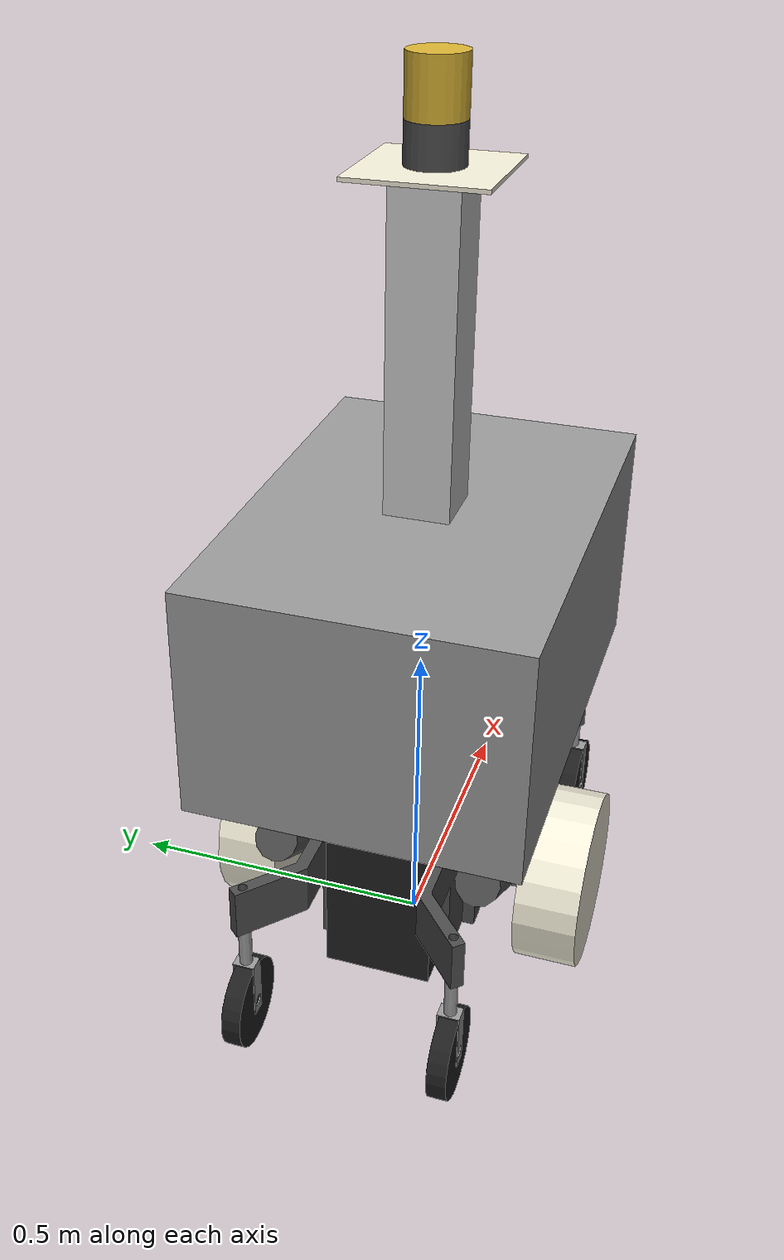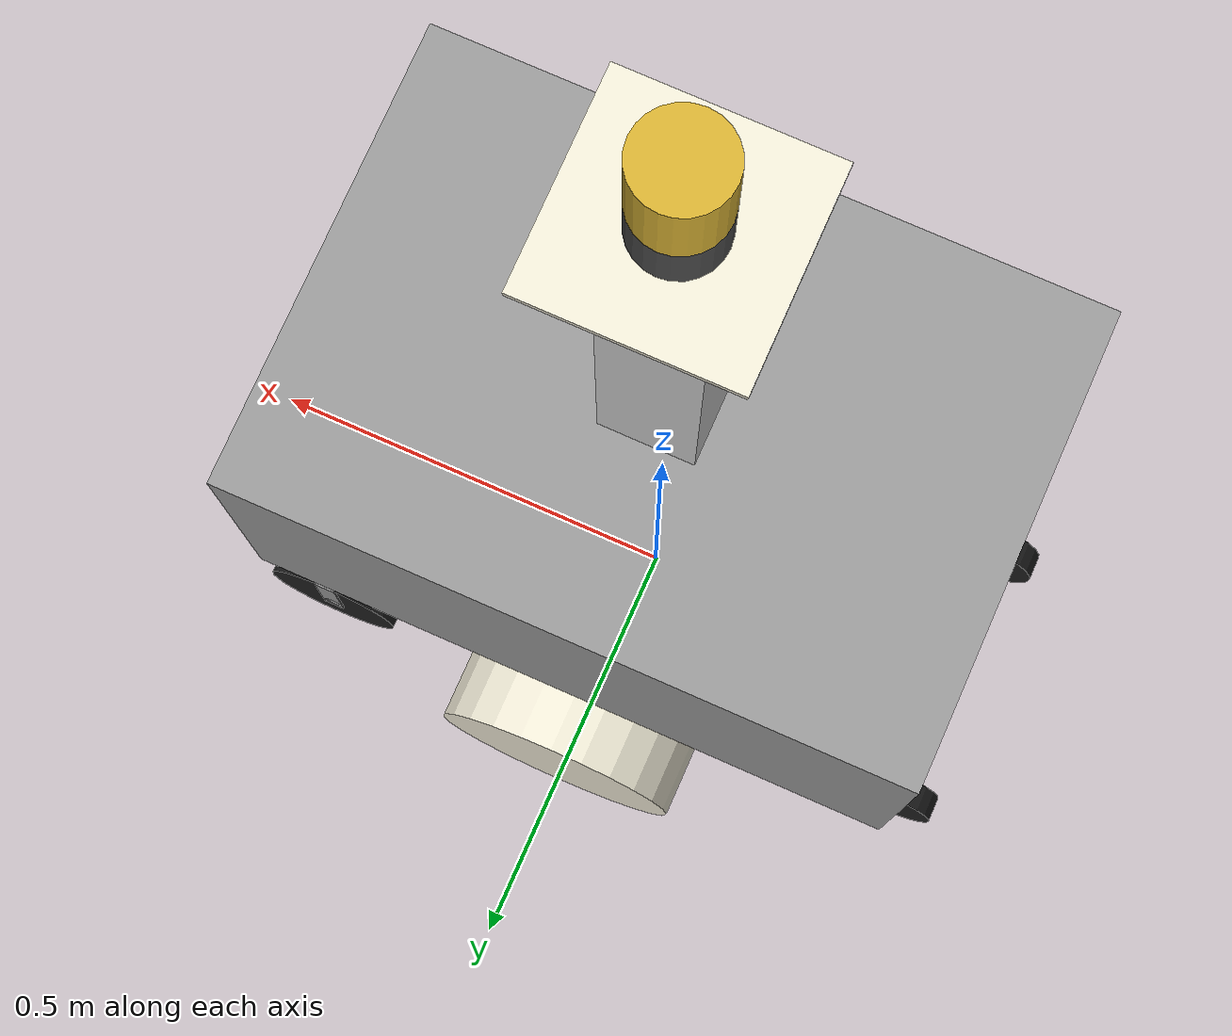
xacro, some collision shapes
<?xml version="1.0" ?>
<robot name="infant" xmlns:xacro="http://ros.org/wiki/xacro">

	<!-- constants for robot dimentions -->
	<xacro:property name="pi" value="3.141592"/>
	<xacro:property name="battery_depth" value="0.420"/>
	<xacro:property name="battery_width" value="0.170"/>
	<xacro:property name="battery_height" value="0.370"/>
	<xacro:property name="rocker_bogie_back_depth" value="0.46056514"/>
	<xacro:property name="rocker_bogie_back_width" value="0.09383127"/>
	<xacro:property name="rocker_bogie_back_height" value="0.230"/>
	<xacro:property name="rocker_bogie_front_depth" value="0.42535668"/>
	<xacro:property name="rocker_bogie_front_width" value="0.11153324"/>
	<xacro:property name="rocker_bogie_front_height" value="0.230"/>
	<xacro:property name="caster_small_length" value="0.065"/>
	<xacro:property name="caster_small_radius" value="0.010"/>
	<xacro:property name="caster_large_length" value="0.045"/>
	<xacro:property name="caster_large_radius" value="0.010"/>
	<xacro:property name="velodyne_base_length" value="0.0586740"/>
	<xacro:property name="velodyne_diameter" value="0.0853440"/>
	<xacro:property name="velodyne_top_length" value="0.0835714"/>
	<xacro:property name="velodyne_laser_depth" value="0.03475311"/>
	<xacro:property name="velodyne_laser_height" value="0.0404979"/>
	<xacro:property name="velodyne_laser_width" value="0.0468099"/>

	<!-- inertial for box -->
	<xacro:macro
		name="default_box_inertial"
		params="mass depth width height x_offset y_offset z_offset">
		<inertial>
			<origin xyz="${x_offset} ${y_offset} ${z_offset}" rpy="0 0 0"/>
			<mass value="${mass}"/>
			<inertia
				ixx="${1/12*mass*(width*width+height*height)}" ixy="0.0" ixz="0.0"
				iyy="${1/12*mass*(height*height+depth*depth)}" iyz="0.0"
				izz="${1/12*mass*(depth*depth+width*width)}"/>
		</inertial>
	</xacro:macro>

	<!-- inertial for cylinder -->
	<xacro:macro
		name="default_cylinder_inertial"
		params="mass length radius x_offset y_offset z_offset">
		<inertial>
			<origin xyz="${x_offset} ${y_offset} ${z_offset}" rpy="0 0 0"/>
			<mass value="${mass}"/>
			<inertia
				ixx="${1/12*mass*(3*radius*radius+length*length)}" ixy="0.0" ixz="0.0"
				iyy="${1/12*mass*(3*radius*radius+length*length)}" iyz="0.0"
				izz="${1/2*mass*radius*radius}"/>
		</inertial>
	</xacro:macro>

	<!-- inertial for wheel -->
	<xacro:macro
		name="default_wheel_inertial"
		params="mass length radius x_offset y_offset z_offset">
		<inertial>
			<origin xyz="${x_offset} ${y_offset} ${z_offset}" rpy="0 0 0"/>
			<mass value="${mass}"/>
			<inertia
				ixx="${1/12*mass*(3*radius*radius+length*length)}" ixy="0.0" ixz="0.0"
				iyy="${1/2*mass*radius*radius}" iyz="0.0"
				izz="${1/12*mass*(3*radius*radius+length*length)}"/>
		</inertial>
	</xacro:macro>

	<!-- import Rviz color -->
	<xacro:include filename="$(find infant_description)/materials/materials.xacro"/>

	<!-- import all Gazebo-customization elements, including Gazebo colors -->
	<xacro:include filename="$(find infant_description)/urdf/infant.gazebo.xacro"/>

	<link name="base_link"/>

	<joint name="base_to_battery_joint" type="fixed">
		<parent link="base_link"/>
		<child link="battery_link"/>
		<origin xyz="0 0 0.140" rpy="0 0 0"/>
	</joint>

	<link name="battery_link">
		<visual>
			<geometry>
				<box size="${battery_depth} ${battery_width} ${battery_height}"/>
			</geometry>
			<origin xyz="0 0 0.085" rpy="0 0 0"/>
			<material name="black"/>
		</visual>
		<collision>
			<geometry>
				<box size="${battery_depth} ${battery_width} ${battery_height}"/>
			</geometry>
			<origin xyz="0 0 0.085" rpy="0 0 0"/>
		</collision>
		<xacro:default_box_inertial
			mass="40" depth="${battery_depth}" width="${battery_width}" height="${battery_height}"
			x_offset="0.0" y_offset="0.0" z_offset="0.085"/>
	</link>

	<xacro:macro name="rocker_bogie_back" params="prefix reflect1 reflect2">
		<joint name="rocker_bogie_back_${prefix}_joint" type="fixed">
			<parent link="battery_link"/>
			<child link="rocker_bogie_back_${prefix}_link"/>
			<origin xyz="0 ${reflect1*0.085} 0" rpy="0 0 0"/>
		</joint>

		<link name="rocker_bogie_back_${prefix}_link">
			<visual>
				<geometry>
					<mesh filename="package://infant_description/meshes/rocker_bogie_parts_back_${prefix}.dae"/>
				</geometry>
				<origin xyz="0 ${reflect2*(-0.020)} 0" rpy="0 ${pi} 0"/>
			</visual>
			<collision>
				<geometry>
					<box size="${rocker_bogie_back_depth} ${rocker_bogie_back_width} ${rocker_bogie_back_height}"/>
				</geometry>
				<origin
					xyz="-${(rocker_bogie_back_depth/2)-0.080} ${reflect1*(rocker_bogie_back_width/2)} 0.035" rpy="0 0 0"/>
			</collision>
			<xacro:default_box_inertial
				mass="5"
				depth="${rocker_bogie_back_depth}"
				width="${rocker_bogie_back_width}"
				height="${rocker_bogie_back_height}"
				x_offset="-${(rocker_bogie_back_depth/2)-0.080}"
				y_offset="${reflect1*(rocker_bogie_back_width/2)}"
				z_offset="0.035"/>
		</link>
	</xacro:macro>

	<xacro:rocker_bogie_back prefix="left" reflect1="1" reflect2="0"/>
	<xacro:rocker_bogie_back prefix="right" reflect1="-1" reflect2="1"/>

	<xacro:macro name="rocker_bogie_front" params="prefix reflect1 reflect2">
		<joint name="rocker_bogie_front_${prefix}_joint" type="fixed">
			<parent link="battery_link"/>
			<child link="rocker_bogie_front_${prefix}_link"/>
			<origin xyz="0 ${reflect1*0.105} 0" rpy="0 0 0"/>
		</joint>

		<link name="rocker_bogie_front_${prefix}_link">
			<visual>
				<geometry>
					<mesh filename="package://infant_description/meshes/rocker_bogie_parts_front_${prefix}.dae"/>
				</geometry>
				<origin xyz="0 ${reflect2*(0.020)} 0" rpy="${pi} 0 0"/>
			</visual>
			<collision>
				<geometry>
					<box size="${rocker_bogie_front_depth} ${rocker_bogie_front_width} ${rocker_bogie_front_height}"/>
				</geometry>
				<origin xyz="${(rocker_bogie_front_depth/2)-0.080} ${reflect1*(rocker_bogie_front_width/2)} 0.035" rpy="0 0 0"/>
			</collision>
			<xacro:default_box_inertial
				mass="5"
				depth="${rocker_bogie_front_depth}"
				width="${rocker_bogie_front_width}"
				height="${rocker_bogie_front_height}"
				x_offset="${(rocker_bogie_front_depth/2)-0.080}"
				y_offset="${reflect1*(rocker_bogie_front_width/2)}"
				z_offset="0.035"/>

		</link>
	</xacro:macro>

	<xacro:rocker_bogie_front prefix="left" reflect1="1" reflect2="1"/>
	<xacro:rocker_bogie_front prefix="right" reflect1="-1" reflect2="0"/>

	<xacro:macro name="caster_small" params="prefix reflect">
		<joint name="caster_small_${prefix}_joint" type="fixed">
			<parent link="rocker_bogie_back_${prefix}_link"/>
			<child link="caster_small_${prefix}_link"/>
			<origin xyz="-0.360 ${reflect*0.075} 0.070" rpy="0 0 0"/>
			<axis xyz="0 0 1"/>
		</joint>

		<link name="caster_small_${prefix}_link">
			<visual>
				<geometry>
					<mesh filename="package://infant_description/meshes/caster_small.dae"/>
				</geometry>
				<origin xyz="0 0 0" rpy="-${pi/2} 0 ${pi/2}"/>
			</visual>
			<collision>
				<geometry>
					<cylinder length="${caster_small_length}" radius="${caster_small_radius}"/>
				</geometry>
				<origin xyz="0 0 -${caster_small_length/2}" rpy="0 0 0"/>
			</collision>
			<xacro:default_cylinder_inertial
				mass="0.5" length="${caster_small_length}" radius="${caster_small_radius}"
				x_offset="0.0" y_offset="0.0" z_offset="-${caster_small_length/2}"/>
		</link>
	</xacro:macro>

	<xacro:caster_small prefix="left" reflect="1"/>
	<xacro:caster_small prefix="right" reflect="-1"/>

	<xacro:macro name="caster_large" params="prefix reflect">
		<joint name="caster_large_${prefix}_joint" type="fixed">
			<parent link="rocker_bogie_front_${prefix}_link"/>
			<child link="caster_large_${prefix}_link"/>
			<origin xyz="0.330 ${reflect*0.095} 0.070" rpy="0 0 0"/>
			<axis xyz="0 0 1"/>
		</joint>

		<link name="caster_large_${prefix}_link">
			<visual>
				<geometry>
					<mesh filename="package://infant_description/meshes/caster_large.dae"/>
				</geometry>
				<origin xyz="0 0 0" rpy="-${pi/2} 0 ${pi/2}"/>
			</visual>
			<collision>
				<geometry>
					<cylinder length="${caster_large_length}" radius="${caster_large_radius}"/>
				</geometry>
				<origin xyz="0 0 -${caster_large_length/2}" rpy="0 0 0"/>
			</collision>
			<xacro:default_cylinder_inertial
				mass="0.5" length="${caster_large_length}" radius="${caster_large_radius}"
				x_offset="0.0" y_offset="0.0" z_offset="-${caster_large_length/2}"/>
		</link>
	</xacro:macro>

	<xacro:caster_large prefix="left" reflect="1"/>
	<xacro:caster_large prefix="right" reflect="-1"/>

	<xacro:macro name="wheel" params="prefix reflect">
		<joint name="wheel_${prefix}_joint" type="continuous">
			<parent link="rocker_bogie_front_${prefix}_link"/>
			<child link="wheel_${prefix}_link"/>
			<origin xyz="0 ${reflect*0.145} 0" rpy="0 0 0"/>
			<axis xyz="0 1 0"/>
		</joint>

		<link name="wheel_${prefix}_link">
			<visual>
				<geometry>
					<cylinder length="0.100" radius="0.14240"/>
				</geometry>
				<origin xyz="0 0 0" rpy="${pi/2} 0 0"/>
				<material name="ivory"/>
			</visual>
			<collision>
				<geometry>
					<cylinder length="0.100" radius="0.14240"/>
				</geometry>
				<origin xyz="0 0 0" rpy="${pi/2} 0 0"/>
			</collision>
			<xacro:default_wheel_inertial
				mass="4" length="0.100" radius="0.142240"
				x_offset="0.0" y_offset="0.0" z_offset="0.0"/>
		</link>
	</xacro:macro>

	<xacro:wheel prefix="left" reflect="1"/>
	<xacro:wheel prefix="right" reflect="-1"/>

	<xacro:macro name="wheel_small" params="prefix">
		<joint name="wheel_small_${prefix}_joint" type="fixed">
			<parent link="caster_small_${prefix}_link"/>
			<child link="wheel_small_${prefix}_link"/>
			<origin xyz="0 0 -0.145" rpy="0 0 0"/>
			<axis xyz="0 1 0"/>
		</joint>

		<link name="wheel_small_${prefix}_link">
			<visual>
				<geometry>
					<cylinder length="0.030" radius="0.070"/>
				</geometry>
				<origin xyz="0 0 0" rpy="${pi/2} 0 0"/>
				<material name="black"/>
			</visual>
			<collision>
				<geometry>
					<cylinder length="0.030" radius="0.070"/>
				</geometry>
				<origin xyz="0 0 0" rpy="${pi/2} 0 0"/>
			</collision>
			<xacro:default_wheel_inertial
				mass="1.5" length="0.030" radius="0.070"
				x_offset="0.0" y_offset="0.0" z_offset="0.0"/>
		</link>
	</xacro:macro>

	<xacro:wheel_small prefix="left"/>
	<xacro:wheel_small prefix="right"/>

	<xacro:macro name="wheel_large" params="prefix">
		<joint name="wheel_large_${prefix}_joint" type="fixed">
			<parent link="caster_large_${prefix}_link"/>
			<child link="wheel_large_${prefix}_link"/>
			<origin xyz="0 0 -0.130" pry="0 0 0"/>
			<axis xyz="0 1 0"/>
		</joint>

		<link name="wheel_large_${prefix}_link">
			<visual>
				<geometry>
					<cylinder length="0.040" radius="0.080"/>
				</geometry>
				<origin xyz="0 0 0" rpy="${pi/2} 0 0"/>
				<material name="black"/>
			</visual>
			<collision>
				<geometry>
					<cylinder length="0.040" radius="0.080"/>
				</geometry>
				<origin xyz="0 0 0" rpy="${pi/2} 0 0"/>
			</collision>
			<xacro:default_wheel_inertial
				mass="1.5" length="0.040" radius="0.080"
				x_offset="0.0" y_offset="0.0" z_offset="0.0"/>
		</link>
	</xacro:macro>

	<xacro:wheel_large prefix="left"/>
	<xacro:wheel_large prefix="right"/>

	<joint name="box_joint" type="fixed">
		<parent link="battery_link"/>
		<child link="box_link"/>
		<origin xyz="0 0 0.450" rpy="0 0 0"/>
	</joint>

	<link name="box_link">
		<visual>
			<geometry>
				<box size="0.720 0.500 0.360"/>
			</geometry>
			<origin xyz="0 0 0" rpy="0 0 0"/>
			<material name="gray"/>
		</visual>
		<collision>
			<geometry>
				<box size="0.720 0.500 0.360"/>
			</geometry>
			<origin xyz="0 0 0" rpy="0 0 0"/>
		</collision>
		<xacro:default_box_inertial
			mass="30" depth="0.720" width="0.500" height="0.360"
			x_offset="0.0" y_offset="0.0" z_offset="0.0"/>
	</link>

	<joint name="mast_joint" type="fixed">
		<parent link="box_link"/>
		<child link="mast_link"/>
		<origin xyz="0 0 0.420" rpy="0 0 0"/>
	</joint>

	<link name="mast_link">
		<visual>
			<geometry>
				<box size="0.100 0.100 0.480"/>
			</geometry>
			<origin xyz="0 0 0" rpy="0 0 0"/>
			<material name="lightgray"/>
		</visual>
		<collision>
			<geometry>
				<box size="0.100 0.100 0.480"/>
			</geometry>
			<origin xyz="0 0 0" rpy="0 0 0"/>
		</collision>
		<xacro:default_box_inertial
			mass="10" depth="0.100" width="0.100" height="0.480"
			x_offset="0.0" y_offset="0.0" z_offset="0.0"/>
	</link>

	<joint name="table_joint" type="fixed">
		<parent link="mast_link"/>
		<child link="table_link"/>
		<origin xyz="0 0 0.246" rpy="0 0 0"/>
	</joint>

	<link name="table_link">
		<visual>
			<geometry>
				<box size="0.200 0.200 0.006"/>
			</geometry>
			<origin xyz="0 0 0" rpy="0 0 0"/>
			<material name="ivory"/>
		</visual>
		<collision>
			<geometry>
				<box size="0.200 0.200 0.006"/>
			</geometry>
			<origin xyz="0 0 0" rpy="0 0 0"/>
		</collision>
		<xacro:default_box_inertial
			mass="1" depth="0.200" width="0.200" height="0.006"
			x_offset="0.0" y_offset="0.0" z_offset="0.0"/>
	</link>

	<!-- velodyne -->
	<joint name="velodyne_base_joint" type="fixed">
		<parent link="table_link"/>
		<child link="velodyne_base_link"/>
		<origin xyz="0 0 0.003" rpy="0 0 0"/>
	</joint>

	<link name="velodyne_base_link">
		<visual>
			<geometry>
				<cylinder length="${velodyne_base_length}" radius="${velodyne_diameter/2}"/>
			</geometry>
			<origin xyz="0 0 ${velodyne_base_length/2}" rpy="0 0 0"/>
			<material name="darkgray"/>
		</visual>
		<collision>
			<geometry>
				<cylinder length="${velodyne_base_length}" radius="${velodyne_diameter/2}"/>
			</geometry>
			<origin xyz="0 0 ${velodyne_base_length/2}" rpy="0 0 0"/>
		</collision>
		<xacro:default_cylinder_inertial
			mass="1.0" length="${velodyne_base_length}" radius="${velodyne_diameter/2}"
			x_offset="0.0" y_offset="0.0" z_offset="${velodyne_base_length/2}"/>
	</link>

	<joint name="velodyne_top_joint" type="continuous">
		<parent link="velodyne_base_link"/>
		<child link="velodyne_top_link"/>
		<origin xyz="0 0 ${velodyne_base_length}" rpy="0 0 0"/>
		<axis xyz="0 0 1"/>
	</joint>

	<link name="velodyne_top_link">
		<visual>
			<geometry>
				<mesh filename="package://infant_description/meshes/velodyne_top.dae"/>
			</geometry>
			<origin xyz="0 0 0" rpy="${pi/2} 0 0"/>
		</visual>
		<collision>
			<geometry>
				<cylinder length="${velodyne_top_length}" radius="${velodyne_diameter/2}"/>
			</geometry>
			<origin xyz="0 0 ${velodyne_top_length/2}" rpy="0 0 0"/>
		</collision>
		<xacro:default_cylinder_inertial
			mass="0.0001" length="${velodyne_top_length}" radius="${velodyne_diameter/2}"
			x_offset="0.0" y_offset="0.0" z_offset="${velodyne_top_length/2}"/>
	</link>

	<joint name="velodyne_laser1_joint" type="fixed">
		<parent link="velodyne_top_link"/>
		<child link="velodyne_laser1_link"/>
		<origin xyz="0 0 ${0.0069204+(velodyne_laser_height/2)}" rpy="-${pi/2} 0 0"/>
	</joint>

	<link name="velodyne_laser1_link">
		<visual>
			<geometry>
				<box size="${velodyne_laser_depth} ${velodyne_laser_width} ${velodyne_laser_height}"/>
			</geometry>
			<origin xyz="${velodyne_laser_depth/2} 0 0" rpy="${pi/2} 0 0"/>
			<material name="lase_black"/>
		</visual>
		<collision>
			<geometry>
				<box size="${velodyne_laser_depth} ${velodyne_laser_width} ${velodyne_laser_height}"/>
			</geometry>
			<origin xyz="${velodyne_laser_depth/2} 0 0" rpy="${pi/2} 0 0"/>
		</collision>
		<xacro:default_box_inertial
			mass="0.0001"
			depth="${velodyne_laser_depth}"
			width="${velodyne_laser_width}"
			height="${velodyne_laser_height}"
			x_offset="${velodyne_laser_depth/2}"
			y_offset="0.0"
			z_offset="0.0"/>
	</link>

	<joint name="velodyne_laser2_joint" type="fixed">
		<parent link="velodyne_top_link"/>
		<child link="velodyne_laser2_link"/>
		<origin xyz="0 0 ${0.0069204+(velodyne_laser_height/2)}" rpy="-${pi/2} 0 ${pi/2}"/>
	</joint>

	<link name="velodyne_laser2_link"/>

	<joint name="velodyne_laser3_joint" type="fixed">
		<parent link="velodyne_top_link"/>
		<child link="velodyne_laser3_link"/>
		<origin xyz="0 0 ${0.0069204+(velodyne_laser_height/2)}" rpy="-${pi/2} 0 ${pi}"/>
	</joint>

	<link name="velodyne_laser3_link"/>

	<joint name="velodyne_laser4_joint" type="fixed">
		<parent link="velodyne_top_link"/>
		<child link="velodyne_laser4_link"/>
		<origin xyz="0 0 ${0.0069204+(velodyne_laser_height/2)}" rpy="-${pi/2} 0 -${pi/2}"/>
	</joint>

	<link name="velodyne_laser4_link"/>

	<joint name="velodyne_laser5_joint" type="fixed">
		<parent link="velodyne_top_link"/>
		<child link="velodyne_laser5_link"/>
		<origin xyz="0 0 ${0.0069204+(velodyne_laser_height/2)}" rpy="-${pi/2} 0 ${pi/4}"/>
	</joint>

	<link name="velodyne_laser5_link"/>

	<joint name="velodyne_laser6_joint" type="fixed">
		<parent link="velodyne_top_link"/>
		<child link="velodyne_laser6_link"/>
		<origin xyz="0 0 ${0.0069204+(velodyne_laser_height/2)}" rpy="-${pi/2} 0 ${3*pi/4}"/>
	</joint>

	<link name="velodyne_laser6_link"/>

	<joint name="velodyne_laser7_joint" type="fixed">
		<parent link="velodyne_top_link"/>
		<child link="velodyne_laser7_link"/>
		<origin xyz="0 0 ${0.0069204+(velodyne_laser_height/2)}" rpy="-${pi/2} 0 -${pi/4}"/>
	</joint>

	<link name="velodyne_laser7_link"/>

	<joint name="velodyne_laser8_joint" type="fixed">
		<parent link="velodyne_top_link"/>
		<child link="velodyne_laser8_link"/>
		<origin xyz="0 0 ${0.0069204+(velodyne_laser_height/2)}" rpy="-${pi/2} 0 -${3*pi/4}"/>
	</joint>

	<link name="velodyne_laser8_link"/>

	<joint name="velodyne_laser9_joint" type="fixed">
		<parent link="velodyne_top_link"/>
		<child link="velodyne_laser9_link"/>
		<origin xyz="0 0 ${0.0069204+(velodyne_laser_height/2)}" rpy="-${pi/2} 0 0"/>
	</joint>

	<link name="velodyne_laser9_link"/>

	<!-- transmission -->
	<transmission name="wheel_left_trans">
		<type>transmission_interface/SimpleTransmission</type>
		<joint name="wheel_left_joint">
			<hardwareInterface>VelocityJointInterface</hardwareInterface>
		</joint>
		<actuator name="wheel_left_motor">
			<hardwareInterface>VelocityJointInterface</hardwareInterface>
			<mechanicalReduction>1</mechanicalReduction>
		</actuator>
	</transmission>

	<transmission name="wheel_right_trans">
		<type>transmission_interface/SimpleTransmission</type>
		<joint name="wheel_right_joint">
			<hardwareInterface>VelocityJointInterface</hardwareInterface>
		</joint>
		<actuator name="wheel_right_motor">
			<hardwareInterface>VelocityJointInterface</hardwareInterface>
			<mechanicalReduction>1</mechanicalReduction>
		</actuator>
	</transmission>

	<transmission name="velodyne_top_trans">
		<type>transmission_interface/SimpleTransmission</type>
		<joint name="velodyne_top_joint">
			<hardwareInterface>VelocityJointInterface</hardwareInterface>
		</joint>
		<actuator name="velodyne_top_motor">
			<hardwareInterface>VelocityJointInterface</hardwareInterface>
			<mechanicalReduction>1</mechanicalReduction>
		</actuator>
	</transmission>

</robot>
